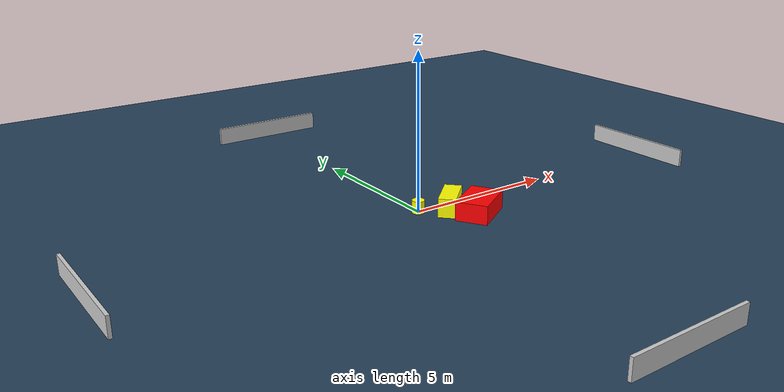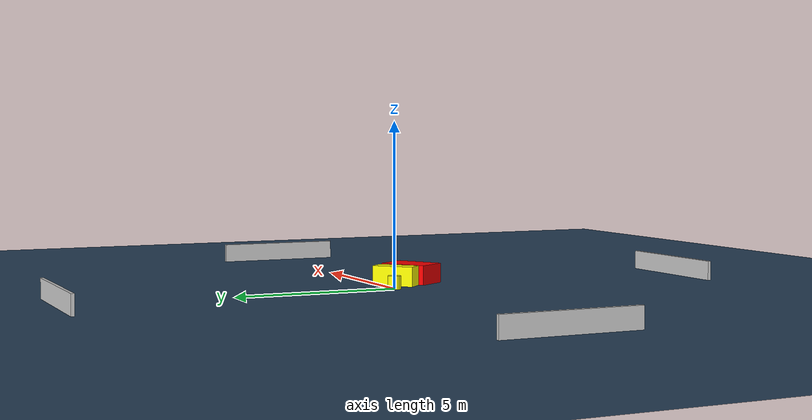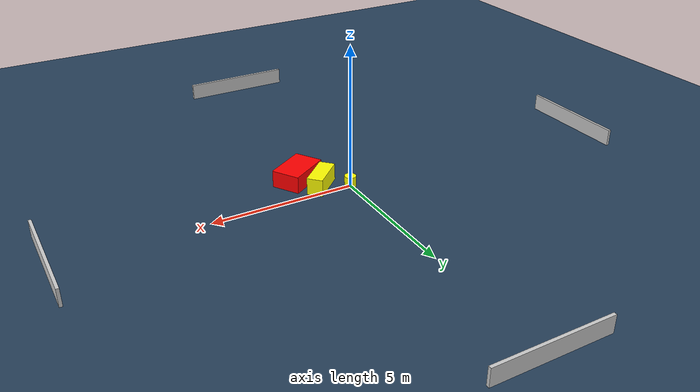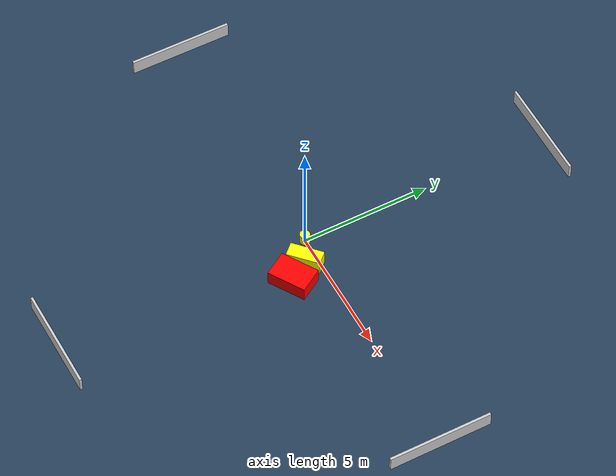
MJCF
<?xml version="1.0" ?>
<mujoco model="generated_environment">
  <option timestep="0.01" integrator="RK4" cone="elliptic"/>
  <default>
    <geom density="1"/>
  </default>
  <asset>
    <texture builtin="gradient" height="3072" name="skybox" rgb1="0.3 0.5 0.7" rgb2="0 0 0" type="skybox" width="512"/>
    <texture builtin="checker" height="300" name="groundplane" rgb1="0.2 0.3 0.4" rgb2="0.1 0.2 0.3" type="2d" width="300"/>
    <material name="groundplane" reflectance="0.2" texrepeat="5 5" texture="groundplane"/>
  </asset>
  <worldbody>
    <light dir="0 0 -1" directional="true" pos="0 0 1.5"/>
    <geom condim="3" friction="0.5 0.005 0.001" material="groundplane" name="floor" pos="0 0 0" size="0 0 0.05" type="plane"/>
    <body name="walls">
      <geom name="wall_1" condim="4" pos="-10.0 0.0 0.3" rgba="0.800000011920929 0.800000011920929 0.800000011920929 1.0" size="0.05 2.0 0.3" type="box"/>
      <geom name="wall_2" condim="4" pos="10.0 0.0 0.3" rgba="0.800000011920929 0.800000011920929 0.800000011920929 1.0" size="0.05 2.0 0.3" type="box"/>
      <geom name="wall_3" condim="4" pos="0.0 -10.0 0.3" rgba="0.800000011920929 0.800000011920929 0.800000011920929 1.0" size="2.0 0.05 0.3" type="box"/>
      <geom name="wall_4" condim="4" pos="0.0 10.0 0.3" rgba="0.800000011920929 0.800000011920929 0.800000011920929 1.0" size="2.0 0.05 0.3" type="box"/>
    </body>
    <body name="robot">
      <joint name="joint_x" type="slide" pos="0 0 0" axis="1 0 0"/>
      <joint name="joint_y" type="slide" pos="0 0 0" axis="0 1 0"/>
      <geom name="robot" type="cylinder" pos="0.0 0.0 0.2" size="0.2 0.2 0.0" mass="5.0" friction="1.0 0.005 0.0001" condim="4" rgba="1.0 1.0 0.0 1.0"/>
    </body>
    <body name="obstacle_1_movable">
      <geom name="obstacle_1_movable" condim="4" pos="0.8777353616735909 -0.45301778866592574 0.3" euler="0 0 313.0759304256636" friction="0.0 0.005 0.001" rgba="1.0 1.0 0.0 1.0" size="0.2743917110104285 0.6469914943090118 0.3" type="box" mass="0.1"/>
      <joint type="free"/>
    </body>
    <body name="obstacle_2_static">
      <geom name="obstacle_2_static" condim="4" pos="1.3928382541230697 -1.2241411556551398 0.3" euler="0 0 121.69352383182631" friction="0.0 0.005 0.001" rgba="1.0 0.0 0.0 1.0" size="0.5057431102650419 0.7599212959688884 0.3" type="box"/>
    </body>
  </worldbody>
  <actuator>
    <motor name="actuator_x" joint="joint_x" gear="1" ctrlrange="-1 1"/>
    <motor name="actuator_y" joint="joint_y" gear="1" ctrlrange="-1 1"/>
  </actuator>
</mujoco>
